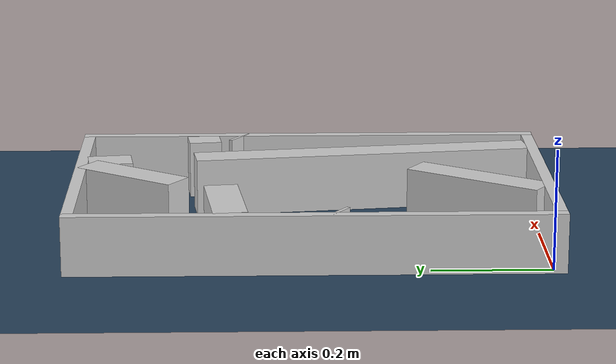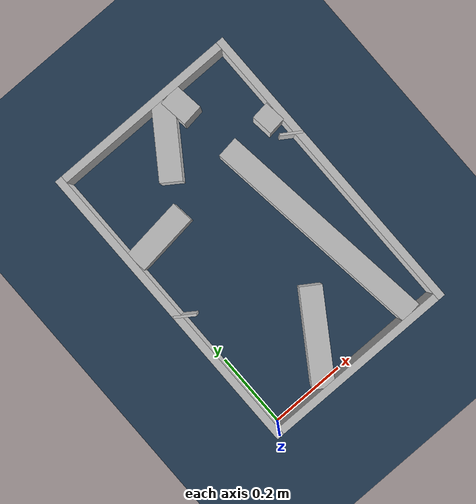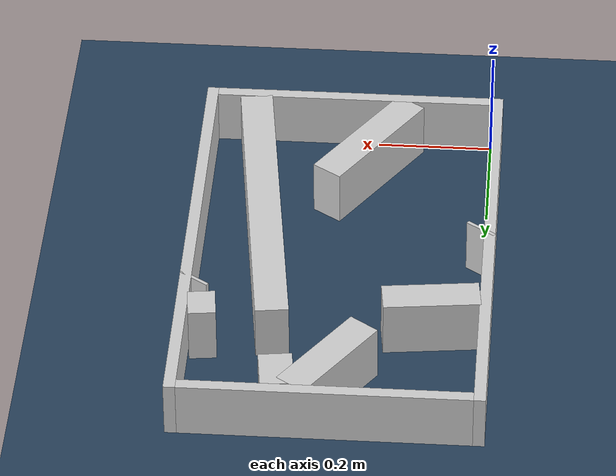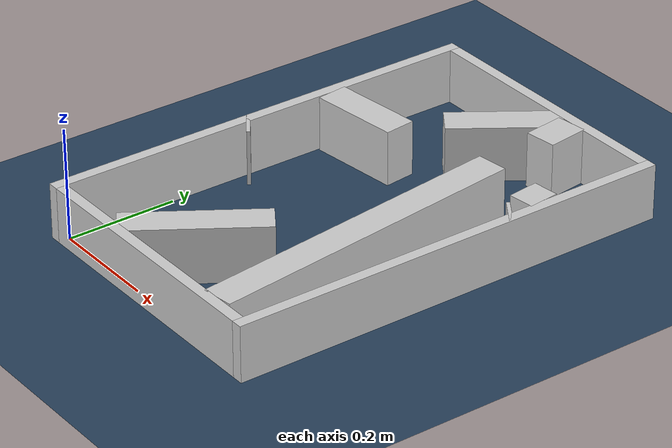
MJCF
<?xml version="1.0" ?>
<mujoco model="generated_real_template">
  <compiler angle="degree"/>
  <option timestep="0.002" integrator="implicitfast" iterations="100" cone="elliptic"/>
  <default>
    <geom density="1"/>
  </default>
  <asset>
    <texture builtin="gradient" height="3072" rgb1="0.3 0.5 0.7" rgb2="0 0 0" type="skybox" width="512"/>
    <texture builtin="checker" height="300" mark="edge" markrgb="0.8 0.8 0.8" name="groundplane" rgb1="0.2 0.3 0.4" rgb2="0.1 0.2 0.3" type="2d" width="300"/>
    <material name="groundplane" reflectance="0.2" texrepeat="5 5" texture="groundplane" texuniform="true"/>
  </asset>
  <worldbody>
    <light dir="0 0 -1" directional="true" pos="0 0 1.5"/>
    <geom name="floor" type="plane" condim="4" friction="0.5 0.005 0.001" material="groundplane" size="0 0 0.05"/>
    <body name="walls">
      <geom name="wall_boundary_left" type="box" condim="4" friction="1.0 0.005 0.0001" rgba="0.8 0.8 0.8 1" pos="-0.010000 0.387500 0.050000" euler="0 0 0.000000" size="0.010000 0.407500 0.050000"/>
      <geom name="wall_boundary_right" type="box" condim="4" friction="1.0 0.005 0.0001" rgba="0.8 0.8 0.8 1" pos="0.500000 0.387500 0.050000" euler="0 0 0.000000" size="0.010000 0.407500 0.050000"/>
      <geom name="wall_boundary_bottom" type="box" condim="4" friction="1.0 0.005 0.0001" rgba="0.8 0.8 0.8 1" pos="0.245000 -0.010000 0.050000" euler="0 0 0.000000" size="0.245000 0.010000 0.050000"/>
      <geom name="wall_boundary_top" type="box" condim="4" friction="1.0 0.005 0.0001" rgba="0.8 0.8 0.8 1" pos="0.245000 0.785000 0.050000" euler="0 0 0.000000" size="0.245000 0.010000 0.050000"/>
      <geom name="wall_inner_1_1" type="box" condim="4" friction="1.0 0.005 0.0001" rgba="0.8 0.8 0.8 1" pos="0.466575 0.576349 0.050000" euler="0 0 -173.491804" size="0.023577 0.028500 0.050000"/>
      <geom name="wall_inner_1_2" type="box" condim="4" friction="1.0 0.005 0.0001" rgba="0.8 0.8 0.8 1" pos="0.082175 0.532496 0.050000" euler="0 0 -173.491804" size="0.082708 0.028500 0.050000"/>
      <geom name="wall_inner_2_1" type="box" condim="4" friction="1.0 0.005 0.0001" rgba="0.8 0.8 0.8 1" pos="0.383850 0.294680 0.050000" euler="0 0 97.152922" size="0.296991 0.028500 0.050000"/>
      <geom name="wall_inner_2_2" type="box" condim="4" friction="1.0 0.005 0.0001" rgba="0.8 0.8 0.8 1" pos="0.328273 0.737541 0.050000" euler="0 0 97.152922" size="0.037753 0.028500 0.050000"/>
      <geom name="wall_inner_3_1" type="box" condim="4" friction="1.0 0.005 0.0001" rgba="0.8 0.8 0.8 1" pos="0.484523 0.513443 0.050000" euler="0 0 -123.569421" size="0.003128 0.028500 0.050000"/>
      <geom name="wall_inner_3_2" type="box" condim="4" friction="1.0 0.005 0.0001" rgba="0.8 0.8 0.8 1" pos="0.212460 0.103481 0.050000" euler="0 0 -123.569421" size="0.124195 0.028500 0.050000"/>
      <geom name="wall_inner_4_1" type="box" condim="4" friction="1.0 0.005 0.0001" rgba="0.8 0.8 0.8 1" pos="0.246412 0.694024 0.050000" euler="0 0 -124.935486" size="0.098775 0.028500 0.050000"/>
      <geom name="wall_inner_4_2" type="box" condim="4" friction="1.0 0.005 0.0001" rgba="0.8 0.8 0.8 1" pos="0.005211 0.348727 0.050000" euler="0 0 -124.935486" size="0.003223 0.028500 0.050000"/>
    </body>
  </worldbody>
</mujoco>
